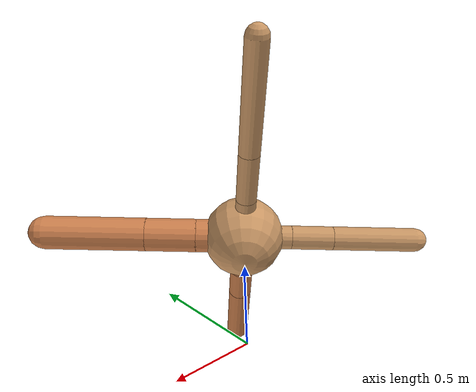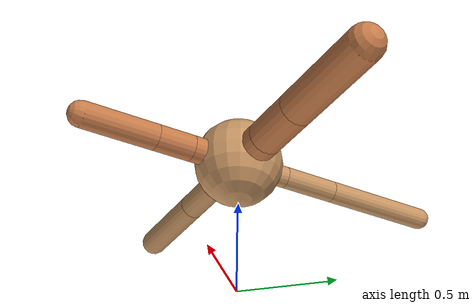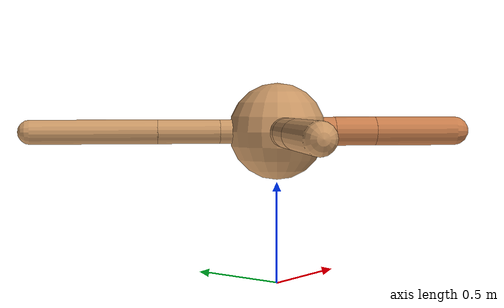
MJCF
<?xml version="1.0" ?>
<mujoco model="ant">

	<compiler angle="degree" coordinate="local" inertiafromgeom="true"/>

	<option integrator="RK4" timestep="0.01"/>

	<custom>

		<numeric data="0.0 0.0 0.55 1.0 0.0 0.0 0.0 0.0 1.0 0.0 -1.0 0.0 -1.0 0.0 1.0" name="init_qpos"/>

	</custom>

	<default>

		<joint armature="1" damping="1" limited="true"/>

		<geom conaffinity="0" condim="3" density="5.0" friction="1.5 0.1 0.1" margin="0.01" rgba="0.8 0.6 0.4 1"/>

	</default>

	<worldbody>

		<body name="torso" pos="0 0 0.75">

			<geom name="torso_geom" pos="0 0 0" size="0.2359280493174925" type="sphere"/>

			<!--joint armature="0" damping="0" limited="false" margin="0.01" name="root" pos="0 0 0" type="free"/-->

			<body name="front_left_leg" pos="0 0 0">

				<geom fromto="0 0 0 0.2 0.2 0" name="aux_1_geom" size="0.0985877123147621" type="capsule" rgba=".8 .5 .3 1"/>

				<body name="aux_1" pos="0.2 0.2 0">

					<joint axis="0 0 1" name="hip_1" pos="0.0 0.0 0.0" range="-40 40" type="hinge"/>

					<geom fromto="0 0 0 0.20948770720043972 0.20948770720043972 0" name="left_leg_geom" size="0.0985877123147621" type="capsule" rgba=".8 .5 .3 1"/>

					<body pos="0.20948770720043972 0.20948770720043972 0" name="front_left_foot">

						<joint axis="-1 1 0" name="ankle_1" pos="0.0 0.0 0.0" range="30 100" type="hinge"/>

						<geom fromto="0 0 0 0.41897541440087943 0.41897541440087943 0" name="left_ankle_geom" size="0.0985877123147621" type="capsule" rgba=".8 .5 .3 1"/>

					</body>

				</body>

			</body>

			<body name="front_right_leg" pos="0 0 0">

				<geom fromto="0 0 0 -0.2 0.2 0" name="aux_2_geom" size="0.05866679937816079" type="capsule"/>

				<body name="aux_2" pos="-0.2 0.2 0">

					<joint axis="0 0 1" name="hip_2" pos="0.0 0.0 0.0" range="-40 40" type="hinge"/>

					<geom fromto="0 0 0 -0.21191951631286693 0.21191951631286693 0" name="right_leg_geom" size="0.05866679937816079" type="capsule"/>

					<body pos="-0.21191951631286693 0.21191951631286693 0" name="front_right_foot">

						<joint axis="1 1 0" name="ankle_2" pos="0.0 0.0 0.0" range="-100 -30" type="hinge"/>

						<geom fromto="0 0 0 -0.42383903262573386 0.42383903262573386 0" name="right_ankle_geom" size="0.05866679937816079" type="capsule"/>

					</body>

				</body>

			</body>

			<body name="left_back_leg" pos="0 0 0">

				<geom fromto="0 0 0 -0.2 -0.2 0" name="aux_3_geom" size="0.07019693186229482" type="capsule"/>

				<body name="aux_3" pos="-0.2 -0.2 0">

					<joint axis="0 0 1" name="hip_3" pos="0.0 0.0 0.0" range="-40 40" type="hinge"/>

					<geom fromto="0 0 0 -0.17425801271315622 -0.17425801271315622 0" name="back_leg_geom" size="0.07019693186229482" type="capsule"/>

					<body pos="-0.17425801271315622 -0.17425801271315622 0" name="left_back_foot">

						<joint axis="-1 1 0" name="ankle_3" pos="0.0 0.0 0.0" range="-100 -30" type="hinge"/>

						<geom fromto="0 0 0 -0.34851602542631244 -0.34851602542631244 0" name="third_ankle_geom" size="0.07019693186229482" type="capsule"/>

					</body>

				</body>

			</body>

			<body name="right_back_leg" pos="0 0 0">

				<geom fromto="0 0 0 0.2 -0.2 0" name="aux_4_geom" size="0.07088589981299284" type="capsule" rgba=".8 .5 .3 1"/>

				<body name="aux_4" pos="0.2 -0.2 0">

					<joint axis="0 0 1" name="hip_4" pos="0.0 0.0 0.0" range="-40 40" type="hinge"/>

					<geom fromto="0 0 0 0.144673054895249 -0.144673054895249 0" name="rightback_leg_geom" size="0.07088589981299284" type="capsule" rgba=".8 .5 .3 1"/>

					<body pos="0.144673054895249 -0.144673054895249 0" name="right_back_foot">

						<joint axis="1 1 0" name="ankle_4" pos="0.0 0.0 0.0" range="30 100" type="hinge"/>

						<geom fromto="0 0 0 0.289346109790498 -0.289346109790498 0" name="fourth_ankle_geom" size="0.07088589981299284" type="capsule" rgba=".8 .5 .3 1"/>

					</body>

				</body>

			</body>

		</body>

	</worldbody>

	<actuator>

		<motor ctrllimited="true" ctrlrange="-1.0 1.0" joint="hip_4" gear="150"/>

		<motor ctrllimited="true" ctrlrange="-1.0 1.0" joint="ankle_4" gear="150"/>

		<motor ctrllimited="true" ctrlrange="-1.0 1.0" joint="hip_1" gear="150"/>

		<motor ctrllimited="true" ctrlrange="-1.0 1.0" joint="ankle_1" gear="150"/>

		<motor ctrllimited="true" ctrlrange="-1.0 1.0" joint="hip_2" gear="150"/>

		<motor ctrllimited="true" ctrlrange="-1.0 1.0" joint="ankle_2" gear="150"/>

		<motor ctrllimited="true" ctrlrange="-1.0 1.0" joint="hip_3" gear="150"/>

		<motor ctrllimited="true" ctrlrange="-1.0 1.0" joint="ankle_3" gear="150"/>

	</actuator>

</mujoco>
